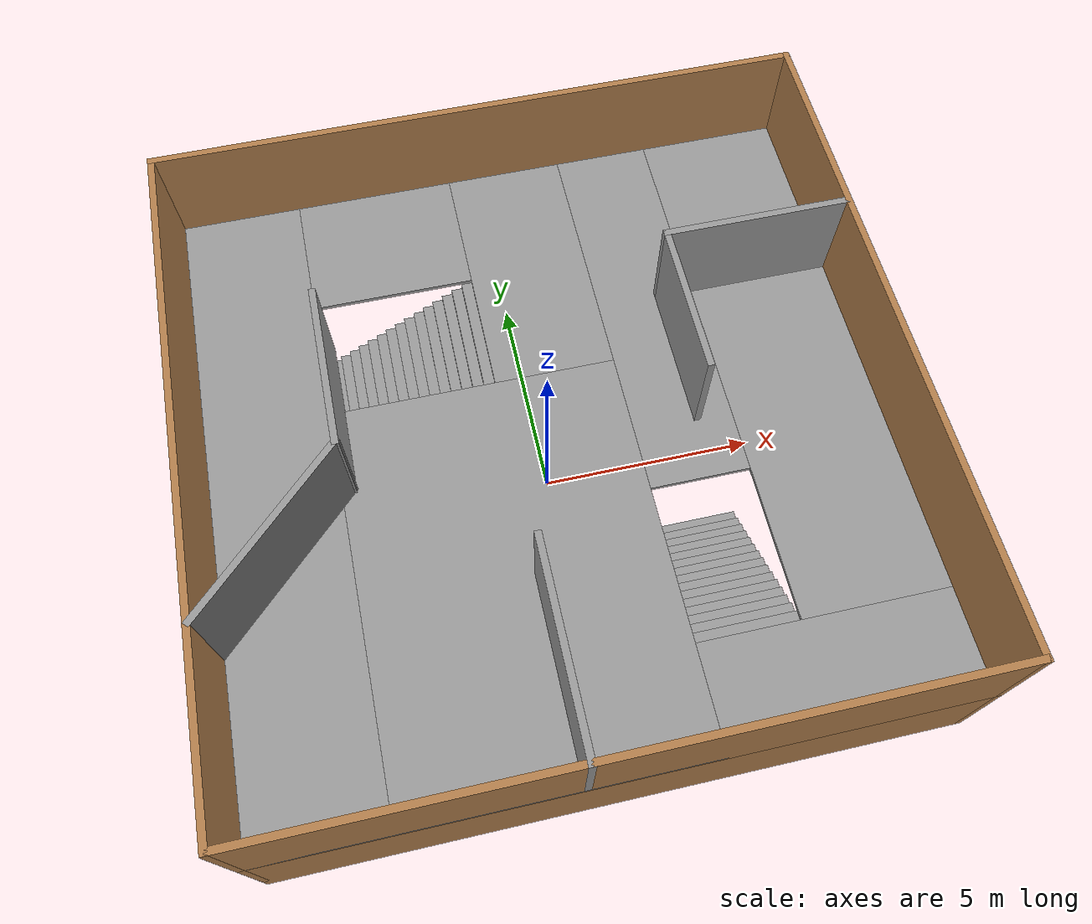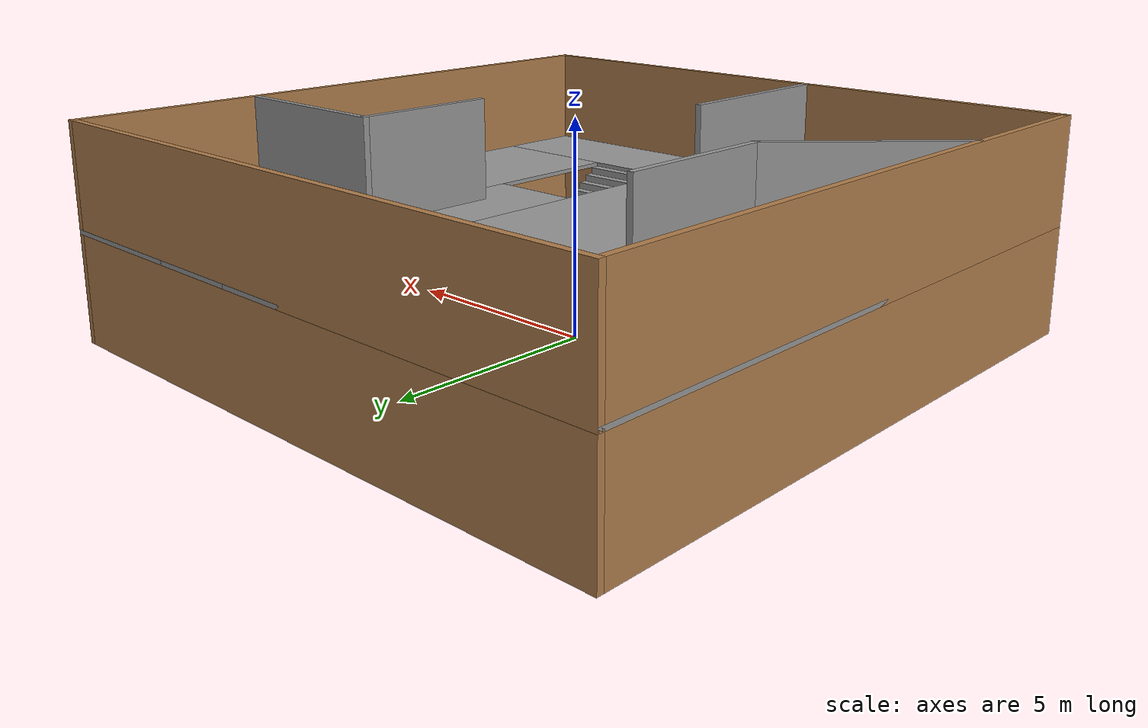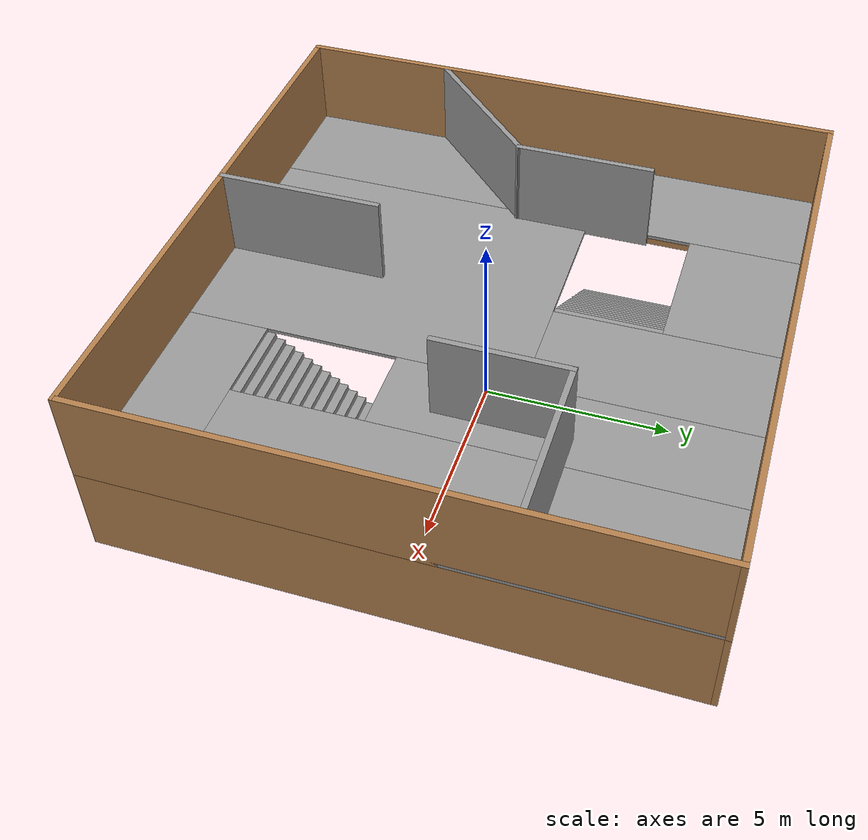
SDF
<?xml version='1.0'?>
<sdf version='1.7'>
  <model name='building_2F'>
    <pose>0 0 0 0 -0 0</pose>
    <link name='Floor_0'>
      <pose>0 0 2.5 0 -0 0</pose>
      <visual name='Floor_0_Visual_0'>
        <pose>-6.10339 0 0.05 0 -0 0</pose>
        <geometry>
          <box>
            <size>2.94322 15.15 0.1</size>
          </box>
        </geometry>
        <material>
          <script>
            <uri>file://media/materials/scripts/gazebo.material</uri>
            <name>Gazebo/Grey</name>
          </script>
          <ambient>1 1 1 1</ambient>
        </material>
        <meta>
          <layer>1</layer>
        </meta>
      </visual>
      <collision name='Floor_0_Collision_0'>
        <geometry>
          <box>
            <size>2.94322 15.15 0.1</size>
          </box>
        </geometry>
        <pose>-6.10339 0 0.05 0 -0 0</pose>
      </collision>
      <visual name='Floor_0_Visual_1'>
        <pose>-1.36989 -3.01402 0.05 0 -0 0</pose>
        <geometry>
          <box>
            <size>6.52378 9.12196 0.1</size>
          </box>
        </geometry>
        <material>
          <script>
            <uri>file://media/materials/scripts/gazebo.material</uri>
            <name>Gazebo/Grey</name>
          </script>
          <ambient>1 1 1 1</ambient>
        </material>
        <meta>
          <layer>1</layer>
        </meta>
      </visual>
      <collision name='Floor_0_Collision_1'>
        <geometry>
          <box>
            <size>6.52378 9.12196 0.1</size>
          </box>
        </geometry>
        <pose>-1.36989 -3.01402 0.05 0 -0 0</pose>
      </collision>
      <visual name='Floor_0_Visual_2'>
        <pose>4.7335 -6.41469 0.05 0 -0 0</pose>
        <geometry>
          <box>
            <size>5.683 2.32061 0.1</size>
          </box>
        </geometry>
        <material>
          <script>
            <uri>file://media/materials/scripts/gazebo.material</uri>
            <name>Gazebo/Grey</name>
          </script>
          <ambient>1 1 1 1</ambient>
        </material>
        <meta>
          <layer>1</layer>
        </meta>
      </visual>
      <collision name='Floor_0_Collision_2'>
        <geometry>
          <box>
            <size>5.683 2.32061 0.1</size>
          </box>
        </geometry>
        <pose>4.7335 -6.41469 0.05 0 -0 0</pose>
      </collision>
      <visual name='Floor_0_Visual_3'>
        <pose>5.85802 1.16031 0.05 0 -0 0</pose>
        <geometry>
          <box>
            <size>3.43395 12.8294 0.1</size>
          </box>
        </geometry>
        <material>
          <script>
            <uri>file://media/materials/scripts/gazebo.material</uri>
            <name>Gazebo/Grey</name>
          </script>
          <ambient>1 1 1 1</ambient>
        </material>
        <meta>
          <layer>1</layer>
        </meta>
      </visual>
      <collision name='Floor_0_Collision_3'>
        <geometry>
          <box>
            <size>3.43395 12.8294 0.1</size>
          </box>
        </geometry>
        <pose>5.85802 1.16031 0.05 0 -0 0</pose>
      </collision>
      <visual name='Floor_0_Visual_4'>
        <pose>3.01652 2.91031 0.05 0 -0 0</pose>
        <geometry>
          <box>
            <size>2.24905 9.32939 0.1</size>
          </box>
        </geometry>
        <material>
          <script>
            <uri>file://media/materials/scripts/gazebo.material</uri>
            <name>Gazebo/Grey</name>
          </script>
          <ambient>1 1 1 1</ambient>
        </material>
        <meta>
          <layer>1</layer>
        </meta>
      </visual>
      <collision name='Floor_0_Collision_4'>
        <geometry>
          <box>
            <size>2.24905 9.32939 0.1</size>
          </box>
        </geometry>
        <pose>3.01652 2.91031 0.05 0 -0 0</pose>
      </collision>
      <visual name='Floor_0_Visual_5'>
        <pose>0.507325 4.56098 0.05 0 -0 0</pose>
        <geometry>
          <box>
            <size>2.76934 6.02804 0.1</size>
          </box>
        </geometry>
        <material>
          <script>
            <uri>file://media/materials/scripts/gazebo.material</uri>
            <name>Gazebo/Grey</name>
          </script>
          <ambient>1 1 1 1</ambient>
        </material>
        <meta>
          <layer>1</layer>
        </meta>
      </visual>
      <collision name='Floor_0_Collision_5'>
        <geometry>
          <box>
            <size>2.76934 6.02804 0.1</size>
          </box>
        </geometry>
        <pose>0.507325 4.56098 0.05 0 -0 0</pose>
      </collision>
      <visual name='Floor_0_Visual_6'>
        <pose>-2.75456 5.99777 0.05 0 -0 0</pose>
        <geometry>
          <box>
            <size>3.75444 3.15446 0.1</size>
          </box>
        </geometry>
        <material>
          <script>
            <uri>file://media/materials/scripts/gazebo.material</uri>
            <name>Gazebo/Grey</name>
          </script>
          <ambient>1 1 1 1</ambient>
        </material>
        <meta>
          <layer>1</layer>
        </meta>
      </visual>
      <collision name='Floor_0_Collision_6'>
        <geometry>
          <box>
            <size>3.75444 3.15446 0.1</size>
          </box>
        </geometry>
        <pose>-2.75456 5.99777 0.05 0 -0 0</pose>
      </collision>
      <visual name='Floor_0_Visual_7'>
        <pose>3.01652 7.575 0.05 0 -0 0</pose>
        <geometry>
          <box>
            <size>2.24905 0 0.1</size>
          </box>
        </geometry>
        <material>
          <script>
            <uri>file://media/materials/scripts/gazebo.material</uri>
            <name>Gazebo/Grey</name>
          </script>
          <ambient>1 1 1 1</ambient>
        </material>
        <meta>
          <layer>1</layer>
        </meta>
      </visual>
      <collision name='Floor_0_Collision_7'>
        <geometry>
          <box>
            <size>2.24905 0 0.1</size>
          </box>
        </geometry>
        <pose>3.01652 7.575 0.05 0 -0 0</pose>
      </collision>
    </link>
    <link name='Stairs_0'>
      <visual name='Stairs_0_Visual_0'>
        <pose>3.01652 -1.87105 0.083333 0 -0 0</pose>
        <geometry>
          <box>
            <size>2.24905 0.233333 0.166667</size>
          </box>
        </geometry>
        <material>
          <script>
            <uri>file://media/materials/scripts/gazebo.material</uri>
            <name>Gazebo/Grey</name>
          </script>
          <ambient>1 1 1 1</ambient>
        </material>
        <meta>
          <layer>0</layer>
        </meta>
      </visual>
      <collision name='Stairs_0_Collision_0'>
        <geometry>
          <box>
            <size>2.24905 0.233333 0.166667</size>
          </box>
        </geometry>
        <pose>3.01652 -1.87105 0.083333 0 -0 0</pose>
      </collision>
      <visual name='Stairs_0_Visual_1'>
        <pose>3.01652 -2.10439 0.25 0 -0 0</pose>
        <geometry>
          <box>
            <size>2.24905 0.233333 0.166667</size>
          </box>
        </geometry>
        <material>
          <script>
            <uri>file://media/materials/scripts/gazebo.material</uri>
            <name>Gazebo/Grey</name>
          </script>
          <ambient>1 1 1 1</ambient>
        </material>
        <meta>
          <layer>0</layer>
        </meta>
      </visual>
      <collision name='Stairs_0_Collision_1'>
        <geometry>
          <box>
            <size>2.24905 0.233333 0.166667</size>
          </box>
        </geometry>
        <pose>3.01652 -2.10439 0.25 0 -0 0</pose>
      </collision>
      <visual name='Stairs_0_Visual_2'>
        <pose>3.01652 -2.33772 0.416667 0 -0 0</pose>
        <geometry>
          <box>
            <size>2.24905 0.233333 0.166667</size>
          </box>
        </geometry>
        <material>
          <script>
            <uri>file://media/materials/scripts/gazebo.material</uri>
            <name>Gazebo/Grey</name>
          </script>
          <ambient>1 1 1 1</ambient>
        </material>
        <meta>
          <layer>0</layer>
        </meta>
      </visual>
      <collision name='Stairs_0_Collision_2'>
        <geometry>
          <box>
            <size>2.24905 0.233333 0.166667</size>
          </box>
        </geometry>
        <pose>3.01652 -2.33772 0.416667 0 -0 0</pose>
      </collision>
      <visual name='Stairs_0_Visual_3'>
        <pose>3.01652 -2.57105 0.583333 0 -0 0</pose>
        <geometry>
          <box>
            <size>2.24905 0.233333 0.166667</size>
          </box>
        </geometry>
        <material>
          <script>
            <uri>file://media/materials/scripts/gazebo.material</uri>
            <name>Gazebo/Grey</name>
          </script>
          <ambient>1 1 1 1</ambient>
        </material>
        <meta>
          <layer>0</layer>
        </meta>
      </visual>
      <collision name='Stairs_0_Collision_3'>
        <geometry>
          <box>
            <size>2.24905 0.233333 0.166667</size>
          </box>
        </geometry>
        <pose>3.01652 -2.57105 0.583333 0 -0 0</pose>
      </collision>
      <visual name='Stairs_0_Visual_4'>
        <pose>3.01652 -2.80439 0.75 0 -0 0</pose>
        <geometry>
          <box>
            <size>2.24905 0.233333 0.166667</size>
          </box>
        </geometry>
        <material>
          <script>
            <uri>file://media/materials/scripts/gazebo.material</uri>
            <name>Gazebo/Grey</name>
          </script>
          <ambient>1 1 1 1</ambient>
        </material>
        <meta>
          <layer>0</layer>
        </meta>
      </visual>
      <collision name='Stairs_0_Collision_4'>
        <geometry>
          <box>
            <size>2.24905 0.233333 0.166667</size>
          </box>
        </geometry>
        <pose>3.01652 -2.80439 0.75 0 -0 0</pose>
      </collision>
      <visual name='Stairs_0_Visual_5'>
        <pose>3.01652 -3.03772 0.916667 0 -0 0</pose>
        <geometry>
          <box>
            <size>2.24905 0.233333 0.166667</size>
          </box>
        </geometry>
        <material>
          <script>
            <uri>file://media/materials/scripts/gazebo.material</uri>
            <name>Gazebo/Grey</name>
          </script>
          <ambient>1 1 1 1</ambient>
        </material>
        <meta>
          <layer>0</layer>
        </meta>
      </visual>
      <collision name='Stairs_0_Collision_5'>
        <geometry>
          <box>
            <size>2.24905 0.233333 0.166667</size>
          </box>
        </geometry>
        <pose>3.01652 -3.03772 0.916667 0 -0 0</pose>
      </collision>
      <visual name='Stairs_0_Visual_6'>
        <pose>3.01652 -3.27105 1.08333 0 -0 0</pose>
        <geometry>
          <box>
            <size>2.24905 0.233333 0.166667</size>
          </box>
        </geometry>
        <material>
          <script>
            <uri>file://media/materials/scripts/gazebo.material</uri>
            <name>Gazebo/Grey</name>
          </script>
          <ambient>1 1 1 1</ambient>
        </material>
        <meta>
          <layer>0</layer>
        </meta>
      </visual>
      <collision name='Stairs_0_Collision_6'>
        <geometry>
          <box>
            <size>2.24905 0.233333 0.166667</size>
          </box>
        </geometry>
        <pose>3.01652 -3.27105 1.08333 0 -0 0</pose>
      </collision>
      <visual name='Stairs_0_Visual_7'>
        <pose>3.01652 -3.50439 1.25 0 -0 0</pose>
        <geometry>
          <box>
            <size>2.24905 0.233333 0.166667</size>
          </box>
        </geometry>
        <material>
          <script>
            <uri>file://media/materials/scripts/gazebo.material</uri>
            <name>Gazebo/Grey</name>
          </script>
          <ambient>1 1 1 1</ambient>
        </material>
        <meta>
          <layer>0</layer>
        </meta>
      </visual>
      <collision name='Stairs_0_Collision_7'>
        <geometry>
          <box>
            <size>2.24905 0.233333 0.166667</size>
          </box>
        </geometry>
        <pose>3.01652 -3.50439 1.25 0 -0 0</pose>
      </collision>
      <visual name='Stairs_0_Visual_8'>
        <pose>3.01652 -3.73772 1.41667 0 -0 0</pose>
        <geometry>
          <box>
            <size>2.24905 0.233333 0.166667</size>
          </box>
        </geometry>
        <material>
          <script>
            <uri>file://media/materials/scripts/gazebo.material</uri>
            <name>Gazebo/Grey</name>
          </script>
          <ambient>1 1 1 1</ambient>
        </material>
        <meta>
          <layer>0</layer>
        </meta>
      </visual>
      <collision name='Stairs_0_Collision_8'>
        <geometry>
          <box>
            <size>2.24905 0.233333 0.166667</size>
          </box>
        </geometry>
        <pose>3.01652 -3.73772 1.41667 0 -0 0</pose>
      </collision>
      <visual name='Stairs_0_Visual_9'>
        <pose>3.01652 -3.97105 1.58333 0 -0 0</pose>
        <geometry>
          <box>
            <size>2.24905 0.233333 0.166667</size>
          </box>
        </geometry>
        <material>
          <script>
            <uri>file://media/materials/scripts/gazebo.material</uri>
            <name>Gazebo/Grey</name>
          </script>
          <ambient>1 1 1 1</ambient>
        </material>
        <meta>
          <layer>0</layer>
        </meta>
      </visual>
      <collision name='Stairs_0_Collision_9'>
        <geometry>
          <box>
            <size>2.24905 0.233333 0.166667</size>
          </box>
        </geometry>
        <pose>3.01652 -3.97105 1.58333 0 -0 0</pose>
      </collision>
      <visual name='Stairs_0_Visual_10'>
        <pose>3.01652 -4.20439 1.75 0 -0 0</pose>
        <geometry>
          <box>
            <size>2.24905 0.233333 0.166667</size>
          </box>
        </geometry>
        <material>
          <script>
            <uri>file://media/materials/scripts/gazebo.material</uri>
            <name>Gazebo/Grey</name>
          </script>
          <ambient>1 1 1 1</ambient>
        </material>
        <meta>
          <layer>0</layer>
        </meta>
      </visual>
      <collision name='Stairs_0_Collision_10'>
        <geometry>
          <box>
            <size>2.24905 0.233333 0.166667</size>
          </box>
        </geometry>
        <pose>3.01652 -4.20439 1.75 0 -0 0</pose>
      </collision>
      <visual name='Stairs_0_Visual_11'>
        <pose>3.01652 -4.43772 1.91667 0 -0 0</pose>
        <geometry>
          <box>
            <size>2.24905 0.233333 0.166667</size>
          </box>
        </geometry>
        <material>
          <script>
            <uri>file://media/materials/scripts/gazebo.material</uri>
            <name>Gazebo/Grey</name>
          </script>
          <ambient>1 1 1 1</ambient>
        </material>
        <meta>
          <layer>0</layer>
        </meta>
      </visual>
      <collision name='Stairs_0_Collision_11'>
        <geometry>
          <box>
            <size>2.24905 0.233333 0.166667</size>
          </box>
        </geometry>
        <pose>3.01652 -4.43772 1.91667 0 -0 0</pose>
      </collision>
      <visual name='Stairs_0_Visual_12'>
        <pose>3.01652 -4.67105 2.08333 0 -0 0</pose>
        <geometry>
          <box>
            <size>2.24905 0.233333 0.166667</size>
          </box>
        </geometry>
        <material>
          <script>
            <uri>file://media/materials/scripts/gazebo.material</uri>
            <name>Gazebo/Grey</name>
          </script>
          <ambient>1 1 1 1</ambient>
        </material>
        <meta>
          <layer>0</layer>
        </meta>
      </visual>
      <collision name='Stairs_0_Collision_12'>
        <geometry>
          <box>
            <size>2.24905 0.233333 0.166667</size>
          </box>
        </geometry>
        <pose>3.01652 -4.67105 2.08333 0 -0 0</pose>
      </collision>
      <visual name='Stairs_0_Visual_13'>
        <pose>3.01652 -4.90439 2.25 0 -0 0</pose>
        <geometry>
          <box>
            <size>2.24905 0.233333 0.166667</size>
          </box>
        </geometry>
        <material>
          <script>
            <uri>file://media/materials/scripts/gazebo.material</uri>
            <name>Gazebo/Grey</name>
          </script>
          <ambient>1 1 1 1</ambient>
        </material>
        <meta>
          <layer>0</layer>
        </meta>
      </visual>
      <collision name='Stairs_0_Collision_13'>
        <geometry>
          <box>
            <size>2.24905 0.233333 0.166667</size>
          </box>
        </geometry>
        <pose>3.01652 -4.90439 2.25 0 -0 0</pose>
      </collision>
      <visual name='Stairs_0_Visual_14'>
        <pose>3.01652 -5.13772 2.41667 0 -0 0</pose>
        <geometry>
          <box>
            <size>2.24905 0.233333 0.166667</size>
          </box>
        </geometry>
        <material>
          <script>
            <uri>file://media/materials/scripts/gazebo.material</uri>
            <name>Gazebo/Grey</name>
          </script>
          <ambient>1 1 1 1</ambient>
        </material>
        <meta>
          <layer>0</layer>
        </meta>
      </visual>
      <collision name='Stairs_0_Collision_14'>
        <geometry>
          <box>
            <size>2.24905 0.233333 0.166667</size>
          </box>
        </geometry>
        <pose>3.01652 -5.13772 2.41667 0 -0 0</pose>
      </collision>
    </link>
    <link name='Stairs_1'>
      <visual name='Stairs_1_Visual_0'>
        <pose>-4.50664 2.98375 0.083333 0 -0 1.5708</pose>
        <geometry>
          <box>
            <size>2.87358 0.250296 0.166667</size>
          </box>
        </geometry>
        <material>
          <script>
            <uri>file://media/materials/scripts/gazebo.material</uri>
            <name>Gazebo/Grey</name>
          </script>
          <ambient>1 1 1 1</ambient>
        </material>
        <meta>
          <layer>0</layer>
        </meta>
      </visual>
      <collision name='Stairs_1_Collision_0'>
        <geometry>
          <box>
            <size>2.87358 0.250296 0.166667</size>
          </box>
        </geometry>
        <pose>-4.50664 2.98375 0.083333 0 -0 1.5708</pose>
      </collision>
      <visual name='Stairs_1_Visual_1'>
        <pose>-4.25634 2.98375 0.25 0 -0 1.5708</pose>
        <geometry>
          <box>
            <size>2.87358 0.250296 0.166667</size>
          </box>
        </geometry>
        <material>
          <script>
            <uri>file://media/materials/scripts/gazebo.material</uri>
            <name>Gazebo/Grey</name>
          </script>
          <ambient>1 1 1 1</ambient>
        </material>
        <meta>
          <layer>0</layer>
        </meta>
      </visual>
      <collision name='Stairs_1_Collision_1'>
        <geometry>
          <box>
            <size>2.87358 0.250296 0.166667</size>
          </box>
        </geometry>
        <pose>-4.25634 2.98375 0.25 0 -0 1.5708</pose>
      </collision>
      <visual name='Stairs_1_Visual_2'>
        <pose>-4.00604 2.98375 0.416667 0 -0 1.5708</pose>
        <geometry>
          <box>
            <size>2.87358 0.250296 0.166667</size>
          </box>
        </geometry>
        <material>
          <script>
            <uri>file://media/materials/scripts/gazebo.material</uri>
            <name>Gazebo/Grey</name>
          </script>
          <ambient>1 1 1 1</ambient>
        </material>
        <meta>
          <layer>0</layer>
        </meta>
      </visual>
      <collision name='Stairs_1_Collision_2'>
        <geometry>
          <box>
            <size>2.87358 0.250296 0.166667</size>
          </box>
        </geometry>
        <pose>-4.00604 2.98375 0.416667 0 -0 1.5708</pose>
      </collision>
      <visual name='Stairs_1_Visual_3'>
        <pose>-3.75575 2.98375 0.583333 0 -0 1.5708</pose>
        <geometry>
          <box>
            <size>2.87358 0.250296 0.166667</size>
          </box>
        </geometry>
        <material>
          <script>
            <uri>file://media/materials/scripts/gazebo.material</uri>
            <name>Gazebo/Grey</name>
          </script>
          <ambient>1 1 1 1</ambient>
        </material>
        <meta>
          <layer>0</layer>
        </meta>
      </visual>
      <collision name='Stairs_1_Collision_3'>
        <geometry>
          <box>
            <size>2.87358 0.250296 0.166667</size>
          </box>
        </geometry>
        <pose>-3.75575 2.98375 0.583333 0 -0 1.5708</pose>
      </collision>
      <visual name='Stairs_1_Visual_4'>
        <pose>-3.50545 2.98375 0.75 0 -0 1.5708</pose>
        <geometry>
          <box>
            <size>2.87358 0.250296 0.166667</size>
          </box>
        </geometry>
        <material>
          <script>
            <uri>file://media/materials/scripts/gazebo.material</uri>
            <name>Gazebo/Grey</name>
          </script>
          <ambient>1 1 1 1</ambient>
        </material>
        <meta>
          <layer>0</layer>
        </meta>
      </visual>
      <collision name='Stairs_1_Collision_4'>
        <geometry>
          <box>
            <size>2.87358 0.250296 0.166667</size>
          </box>
        </geometry>
        <pose>-3.50545 2.98375 0.75 0 -0 1.5708</pose>
      </collision>
      <visual name='Stairs_1_Visual_5'>
        <pose>-3.25516 2.98375 0.916667 0 -0 1.5708</pose>
        <geometry>
          <box>
            <size>2.87358 0.250296 0.166667</size>
          </box>
        </geometry>
        <material>
          <script>
            <uri>file://media/materials/scripts/gazebo.material</uri>
            <name>Gazebo/Grey</name>
          </script>
          <ambient>1 1 1 1</ambient>
        </material>
        <meta>
          <layer>0</layer>
        </meta>
      </visual>
      <collision name='Stairs_1_Collision_5'>
        <geometry>
          <box>
            <size>2.87358 0.250296 0.166667</size>
          </box>
        </geometry>
        <pose>-3.25516 2.98375 0.916667 0 -0 1.5708</pose>
      </collision>
      <visual name='Stairs_1_Visual_6'>
        <pose>-3.00486 2.98375 1.08333 0 -0 1.5708</pose>
        <geometry>
          <box>
            <size>2.87358 0.250296 0.166667</size>
          </box>
        </geometry>
        <material>
          <script>
            <uri>file://media/materials/scripts/gazebo.material</uri>
            <name>Gazebo/Grey</name>
          </script>
          <ambient>1 1 1 1</ambient>
        </material>
        <meta>
          <layer>0</layer>
        </meta>
      </visual>
      <collision name='Stairs_1_Collision_6'>
        <geometry>
          <box>
            <size>2.87358 0.250296 0.166667</size>
          </box>
        </geometry>
        <pose>-3.00486 2.98375 1.08333 0 -0 1.5708</pose>
      </collision>
      <visual name='Stairs_1_Visual_7'>
        <pose>-2.75456 2.98375 1.25 0 -0 1.5708</pose>
        <geometry>
          <box>
            <size>2.87358 0.250296 0.166667</size>
          </box>
        </geometry>
        <material>
          <script>
            <uri>file://media/materials/scripts/gazebo.material</uri>
            <name>Gazebo/Grey</name>
          </script>
          <ambient>1 1 1 1</ambient>
        </material>
        <meta>
          <layer>0</layer>
        </meta>
      </visual>
      <collision name='Stairs_1_Collision_7'>
        <geometry>
          <box>
            <size>2.87358 0.250296 0.166667</size>
          </box>
        </geometry>
        <pose>-2.75456 2.98375 1.25 0 -0 1.5708</pose>
      </collision>
      <visual name='Stairs_1_Visual_8'>
        <pose>-2.50427 2.98375 1.41667 0 -0 1.5708</pose>
        <geometry>
          <box>
            <size>2.87358 0.250296 0.166667</size>
          </box>
        </geometry>
        <material>
          <script>
            <uri>file://media/materials/scripts/gazebo.material</uri>
            <name>Gazebo/Grey</name>
          </script>
          <ambient>1 1 1 1</ambient>
        </material>
        <meta>
          <layer>0</layer>
        </meta>
      </visual>
      <collision name='Stairs_1_Collision_8'>
        <geometry>
          <box>
            <size>2.87358 0.250296 0.166667</size>
          </box>
        </geometry>
        <pose>-2.50427 2.98375 1.41667 0 -0 1.5708</pose>
      </collision>
      <visual name='Stairs_1_Visual_9'>
        <pose>-2.25397 2.98375 1.58333 0 -0 1.5708</pose>
        <geometry>
          <box>
            <size>2.87358 0.250296 0.166667</size>
          </box>
        </geometry>
        <material>
          <script>
            <uri>file://media/materials/scripts/gazebo.material</uri>
            <name>Gazebo/Grey</name>
          </script>
          <ambient>1 1 1 1</ambient>
        </material>
        <meta>
          <layer>0</layer>
        </meta>
      </visual>
      <collision name='Stairs_1_Collision_9'>
        <geometry>
          <box>
            <size>2.87358 0.250296 0.166667</size>
          </box>
        </geometry>
        <pose>-2.25397 2.98375 1.58333 0 -0 1.5708</pose>
      </collision>
      <visual name='Stairs_1_Visual_10'>
        <pose>-2.00368 2.98375 1.75 0 -0 1.5708</pose>
        <geometry>
          <box>
            <size>2.87358 0.250296 0.166667</size>
          </box>
        </geometry>
        <material>
          <script>
            <uri>file://media/materials/scripts/gazebo.material</uri>
            <name>Gazebo/Grey</name>
          </script>
          <ambient>1 1 1 1</ambient>
        </material>
        <meta>
          <layer>0</layer>
        </meta>
      </visual>
      <collision name='Stairs_1_Collision_10'>
        <geometry>
          <box>
            <size>2.87358 0.250296 0.166667</size>
          </box>
        </geometry>
        <pose>-2.00368 2.98375 1.75 0 -0 1.5708</pose>
      </collision>
      <visual name='Stairs_1_Visual_11'>
        <pose>-1.75338 2.98375 1.91667 0 -0 1.5708</pose>
        <geometry>
          <box>
            <size>2.87358 0.250296 0.166667</size>
          </box>
        </geometry>
        <material>
          <script>
            <uri>file://media/materials/scripts/gazebo.material</uri>
            <name>Gazebo/Grey</name>
          </script>
          <ambient>1 1 1 1</ambient>
        </material>
        <meta>
          <layer>0</layer>
        </meta>
      </visual>
      <collision name='Stairs_1_Collision_11'>
        <geometry>
          <box>
            <size>2.87358 0.250296 0.166667</size>
          </box>
        </geometry>
        <pose>-1.75338 2.98375 1.91667 0 -0 1.5708</pose>
      </collision>
      <visual name='Stairs_1_Visual_12'>
        <pose>-1.50309 2.98375 2.08333 0 -0 1.5708</pose>
        <geometry>
          <box>
            <size>2.87358 0.250296 0.166667</size>
          </box>
        </geometry>
        <material>
          <script>
            <uri>file://media/materials/scripts/gazebo.material</uri>
            <name>Gazebo/Grey</name>
          </script>
          <ambient>1 1 1 1</ambient>
        </material>
        <meta>
          <layer>0</layer>
        </meta>
      </visual>
      <collision name='Stairs_1_Collision_12'>
        <geometry>
          <box>
            <size>2.87358 0.250296 0.166667</size>
          </box>
        </geometry>
        <pose>-1.50309 2.98375 2.08333 0 -0 1.5708</pose>
      </collision>
      <visual name='Stairs_1_Visual_13'>
        <pose>-1.25279 2.98375 2.25 0 -0 1.5708</pose>
        <geometry>
          <box>
            <size>2.87358 0.250296 0.166667</size>
          </box>
        </geometry>
        <material>
          <script>
            <uri>file://media/materials/scripts/gazebo.material</uri>
            <name>Gazebo/Grey</name>
          </script>
          <ambient>1 1 1 1</ambient>
        </material>
        <meta>
          <layer>0</layer>
        </meta>
      </visual>
      <collision name='Stairs_1_Collision_13'>
        <geometry>
          <box>
            <size>2.87358 0.250296 0.166667</size>
          </box>
        </geometry>
        <pose>-1.25279 2.98375 2.25 0 -0 1.5708</pose>
      </collision>
      <visual name='Stairs_1_Visual_14'>
        <pose>-1.00249 2.98375 2.41667 0 -0 1.5708</pose>
        <geometry>
          <box>
            <size>2.87358 0.250296 0.166667</size>
          </box>
        </geometry>
        <material>
          <script>
            <uri>file://media/materials/scripts/gazebo.material</uri>
            <name>Gazebo/Grey</name>
          </script>
          <ambient>1 1 1 1</ambient>
        </material>
        <meta>
          <layer>0</layer>
        </meta>
      </visual>
      <collision name='Stairs_1_Collision_14'>
        <geometry>
          <box>
            <size>2.87358 0.250296 0.166667</size>
          </box>
        </geometry>
        <pose>-1.00249 2.98375 2.41667 0 -0 1.5708</pose>
      </collision>
    </link>
    <link name='Wall_0'>
      <collision name='Wall_0_Collision'>
        <geometry>
          <box>
            <size>15.15 0.15 2.5</size>
          </box>
        </geometry>
        <pose>0 0 1.25 0 -0 0</pose>
      </collision>
      <visual name='Wall_0_Visual'>
        <pose>0 0 1.25 0 -0 0</pose>
        <geometry>
          <box>
            <size>15.15 0.15 2.5</size>
          </box>
        </geometry>
        <material>
          <script>
            <uri>file://media/materials/scripts/gazebo.material</uri>
            <name>Gazebo/Wood</name>
          </script>
          <ambient>1 1 1 1</ambient>
        </material>
        <meta>
          <layer>0</layer>
        </meta>
      </visual>
      <pose>7.5 0 0 0 -0 1.5708</pose>
    </link>
    <link name='Wall_1'>
      <collision name='Wall_1_Collision'>
        <geometry>
          <box>
            <size>15.15 0.15 2.5</size>
          </box>
        </geometry>
        <pose>0 0 1.25 0 -0 0</pose>
      </collision>
      <visual name='Wall_1_Visual'>
        <pose>0 0 1.25 0 -0 0</pose>
        <geometry>
          <box>
            <size>15.15 0.15 2.5</size>
          </box>
        </geometry>
        <material>
          <script>
            <uri>file://media/materials/scripts/gazebo.material</uri>
            <name>Gazebo/Wood</name>
          </script>
          <ambient>1 1 1 1</ambient>
        </material>
        <meta>
          <layer>0</layer>
        </meta>
      </visual>
      <pose>0 7.5 0 0 -0 3.14159</pose>
    </link>
    <link name='Wall_11'>
      <collision name='Wall_11_Collision'>
        <geometry>
          <box>
            <size>15.15 0.15 2.5</size>
          </box>
        </geometry>
        <pose>0 0 1.25 0 -0 0</pose>
      </collision>
      <visual name='Wall_11_Visual'>
        <pose>0 0 1.25 0 -0 0</pose>
        <geometry>
          <box>
            <size>15.15 0.15 2.5</size>
          </box>
        </geometry>
        <material>
          <script>
            <uri>file://media/materials/scripts/gazebo.material</uri>
            <name>Gazebo/Wood</name>
          </script>
          <ambient>1 1 1 1</ambient>
        </material>
        <meta>
          <layer>1</layer>
        </meta>
      </visual>
      <pose>7.5 0 2.5 0 -0 1.5708</pose>
    </link>
    <link name='Wall_12'>
      <collision name='Wall_12_Collision'>
        <geometry>
          <box>
            <size>15.15 0.15 2.5</size>
          </box>
        </geometry>
        <pose>0 0 1.25 0 -0 0</pose>
      </collision>
      <visual name='Wall_12_Visual'>
        <pose>0 0 1.25 0 -0 0</pose>
        <geometry>
          <box>
            <size>15.15 0.15 2.5</size>
          </box>
        </geometry>
        <material>
          <script>
            <uri>file://media/materials/scripts/gazebo.material</uri>
            <name>Gazebo/Wood</name>
          </script>
          <ambient>1 1 1 1</ambient>
        </material>
        <meta>
          <layer>1</layer>
        </meta>
      </visual>
      <pose>0 7.5 2.5 0 -0 3.14159</pose>
    </link>
    <link name='Wall_13'>
      <collision name='Wall_13_Collision'>
        <geometry>
          <box>
            <size>15.15 0.15 2.5</size>
          </box>
        </geometry>
        <pose>0 0 1.25 0 -0 0</pose>
      </collision>
      <visual name='Wall_13_Visual'>
        <pose>0 0 1.25 0 -0 0</pose>
        <geometry>
          <box>
            <size>15.15 0.15 2.5</size>
          </box>
        </geometry>
        <material>
          <script>
            <uri>file://media/materials/scripts/gazebo.material</uri>
            <name>Gazebo/Wood</name>
          </script>
          <ambient>1 1 1 1</ambient>
        </material>
        <meta>
          <layer>1</layer>
        </meta>
      </visual>
      <pose>-7.5 0 2.5 0 -0 -1.5708</pose>
    </link>
    <link name='Wall_14'>
      <collision name='Wall_14_Collision'>
        <geometry>
          <box>
            <size>15.15 0.15 2.5</size>
          </box>
        </geometry>
        <pose>0 0 1.25 0 -0 0</pose>
      </collision>
      <visual name='Wall_14_Visual'>
        <pose>0 0 1.25 0 -0 0</pose>
        <geometry>
          <box>
            <size>15.15 0.15 2.5</size>
          </box>
        </geometry>
        <material>
          <script>
            <uri>file://media/materials/scripts/gazebo.material</uri>
            <name>Gazebo/Wood</name>
          </script>
          <ambient>1 1 1 1</ambient>
        </material>
        <meta>
          <layer>1</layer>
        </meta>
      </visual>
      <pose>0 -7.5 2.5 0 -0 0</pose>
    </link>
    <link name='Wall_2'>
      <collision name='Wall_2_Collision'>
        <geometry>
          <box>
            <size>15.15 0.15 2.5</size>
          </box>
        </geometry>
        <pose>0 0 1.25 0 -0 0</pose>
      </collision>
      <visual name='Wall_2_Visual'>
        <pose>0 0 1.25 0 -0 0</pose>
        <geometry>
          <box>
            <size>15.15 0.15 2.5</size>
          </box>
        </geometry>
        <material>
          <script>
            <uri>file://media/materials/scripts/gazebo.material</uri>
            <name>Gazebo/Wood</name>
          </script>
          <ambient>1 1 1 1</ambient>
        </material>
        <meta>
          <layer>0</layer>
        </meta>
      </visual>
      <pose>-7.5 0 0 0 -0 -1.5708</pose>
    </link>
    <link name='Wall_20'>
      <collision name='Wall_20_Collision'>
        <geometry>
          <box>
            <size>4.25 0.15 2.5</size>
          </box>
        </geometry>
        <pose>0 0 1.25 0 -0 0</pose>
      </collision>
      <visual name='Wall_20_Visual'>
        <pose>0 0 1.25 0 -0 0</pose>
        <geometry>
          <box>
            <size>4.25 0.15 2.5</size>
          </box>
        </geometry>
        <material>
          <script>
            <uri>file://media/materials/scripts/gazebo.material</uri>
            <name>Gazebo/Grey</name>
          </script>
          <ambient>1 1 1 1</ambient>
        </material>
        <meta>
          <layer>1</layer>
        </meta>
      </visual>
      <pose>5.38823 3.05821 2.5 0 -0 3.14159</pose>
    </link>
    <link name='Wall_21'>
      <collision name='Wall_21_Collision'>
        <geometry>
          <box>
            <size>3.5 0.15 2.5</size>
          </box>
        </geometry>
        <pose>0 0 1.25 0 -0 0</pose>
      </collision>
      <visual name='Wall_21_Visual'>
        <pose>0 0 1.25 0 -0 0</pose>
        <geometry>
          <box>
            <size>3.5 0.15 2.5</size>
          </box>
        </geometry>
        <material>
          <script>
            <uri>file://media/materials/scripts/gazebo.material</uri>
            <name>Gazebo/Grey</name>
          </script>
          <ambient>1 1 1 1</ambient>
        </material>
        <meta>
          <layer>1</layer>
        </meta>
      </visual>
      <pose>3.33823 1.38321 2.5 0 -0 -1.5708</pose>
    </link>
    <link name='Wall_23'>
      <collision name='Wall_23_Collision'>
        <geometry>
          <box>
            <size>4.5 0.15 2.5</size>
          </box>
        </geometry>
        <pose>0 0 1.25 0 -0 0</pose>
      </collision>
      <visual name='Wall_23_Visual'>
        <pose>0 0 1.25 0 -0 0</pose>
        <geometry>
          <box>
            <size>4.5 0.15 2.5</size>
          </box>
        </geometry>
        <material>
          <script>
            <uri>file://media/materials/scripts/gazebo.material</uri>
            <name>Gazebo/Grey</name>
          </script>
          <ambient>1 1 1 1</ambient>
        </material>
        <meta>
          <layer>1</layer>
        </meta>
      </visual>
      <pose>-5.91993 -1.94748 2.5 0 -0 0.785398</pose>
    </link>
    <link name='Wall_24'>
      <collision name='Wall_24_Collision'>
        <geometry>
          <box>
            <size>3.75 0.15 2.5</size>
          </box>
        </geometry>
        <pose>0 0 1.25 0 -0 0</pose>
      </collision>
      <visual name='Wall_24_Visual'>
        <pose>0 0 1.25 0 -0 0</pose>
        <geometry>
          <box>
            <size>3.75 0.15 2.5</size>
          </box>
        </geometry>
        <material>
          <script>
            <uri>file://media/materials/scripts/gazebo.material</uri>
            <name>Gazebo/Grey</name>
          </script>
          <ambient>1 1 1 1</ambient>
        </material>
        <meta>
          <layer>1</layer>
        </meta>
      </visual>
      <pose>-4.38197 1.39047 2.5 0 -0 1.5708</pose>
    </link>
    <link name='Wall_26'>
      <collision name='Wall_26_Collision'>
        <geometry>
          <box>
            <size>4.457 0.15 2.5</size>
          </box>
        </geometry>
        <pose>0 0 1.25 0 -0 0</pose>
      </collision>
      <visual name='Wall_26_Visual'>
        <pose>0 0 1.25 0 -0 0</pose>
        <geometry>
          <box>
            <size>4.457 0.15 2.5</size>
          </box>
        </geometry>
        <material>
          <script>
            <uri>file://media/materials/scripts/gazebo.material</uri>
            <name>Gazebo/Grey</name>
          </script>
          <ambient>1 1 1 1</ambient>
        </material>
        <meta>
          <layer>1</layer>
        </meta>
      </visual>
      <pose>-0.888 -5.3465 2.5 0 -0 -1.5708</pose>
    </link>
    <link name='Wall_3'>
      <collision name='Wall_3_Collision'>
        <geometry>
          <box>
            <size>15.15 0.15 2.5</size>
          </box>
        </geometry>
        <pose>0 0 1.25 0 -0 0</pose>
      </collision>
      <visual name='Wall_3_Visual'>
        <pose>0 0 1.25 0 -0 0</pose>
        <geometry>
          <box>
            <size>15.15 0.15 2.5</size>
          </box>
        </geometry>
        <material>
          <script>
            <uri>file://media/materials/scripts/gazebo.material</uri>
            <name>Gazebo/Wood</name>
          </script>
          <ambient>1 1 1 1</ambient>
        </material>
        <meta>
          <layer>0</layer>
        </meta>
      </visual>
      <pose>0 -7.5 0 0 -0 0</pose>
    </link>
    <link name='Wall_5'>
      <collision name='Wall_5_Collision'>
        <geometry>
          <box>
            <size>2.25 0.15 2.5</size>
          </box>
        </geometry>
        <pose>0 0 1.25 0 -0 0</pose>
      </collision>
      <visual name='Wall_5_Visual'>
        <pose>0 0 1.25 0 -0 0</pose>
        <geometry>
          <box>
            <size>2.25 0.15 2.5</size>
          </box>
        </geometry>
        <material>
          <script>
            <uri>file://media/materials/scripts/gazebo.material</uri>
            <name>Gazebo/Grey</name>
          </script>
          <ambient>1 1 1 1</ambient>
        </material>
        <meta>
          <layer>0</layer>
        </meta>
      </visual>
      <pose>-3.3444 -2.63455 0 0 -0 -1.5708</pose>
    </link>
    <link name='Wall_6'>
      <collision name='Wall_6_Collision'>
        <geometry>
          <box>
            <size>4.25 0.15 2.5</size>
          </box>
        </geometry>
        <pose>0 0 1.25 0 -0 0</pose>
      </collision>
      <visual name='Wall_6_Visual'>
        <pose>0 0 1.25 0 -0 0</pose>
        <geometry>
          <box>
            <size>4.25 0.15 2.5</size>
          </box>
        </geometry>
        <material>
          <script>
            <uri>file://media/materials/scripts/gazebo.material</uri>
            <name>Gazebo/Grey</name>
          </script>
          <ambient>1 1 1 1</ambient>
        </material>
        <meta>
          <layer>0</layer>
        </meta>
      </visual>
      <pose>-5.3944 -3.68455 0 0 -0 3.14159</pose>
    </link>
    <link name='Wall_8'>
      <collision name='Wall_8_Collision'>
        <geometry>
          <box>
            <size>3 0.15 2.5</size>
          </box>
        </geometry>
        <pose>0 0 1.25 0 -0 0</pose>
      </collision>
      <visual name='Wall_8_Visual'>
        <pose>0 0 1.25 0 -0 0</pose>
        <geometry>
          <box>
            <size>3 0.15 2.5</size>
          </box>
        </geometry>
        <material>
          <script>
            <uri>file://media/materials/scripts/gazebo.material</uri>
            <name>Gazebo/Grey</name>
          </script>
          <ambient>1 1 1 1</ambient>
        </material>
        <meta>
          <layer>0</layer>
        </meta>
      </visual>
      <pose>1.61278 3.17602 0 0 -0 -1.5708</pose>
    </link>
    <link name='Wall_9'>
      <collision name='Wall_9_Collision'>
        <geometry>
          <box>
            <size>3 0.15 2.5</size>
          </box>
        </geometry>
        <pose>0 0 1.25 0 -0 0</pose>
      </collision>
      <visual name='Wall_9_Visual'>
        <pose>0 0 1.25 0 -0 0</pose>
        <geometry>
          <box>
            <size>3 0.15 2.5</size>
          </box>
        </geometry>
        <material>
          <script>
            <uri>file://media/materials/scripts/gazebo.material</uri>
            <name>Gazebo/Grey</name>
          </script>
          <ambient>1 1 1 1</ambient>
        </material>
        <meta>
          <layer>0</layer>
        </meta>
      </visual>
      <pose>3.03778 1.75102 0 0 -0 0</pose>
    </link>
    <static>1</static>
  </model>
</sdf>
